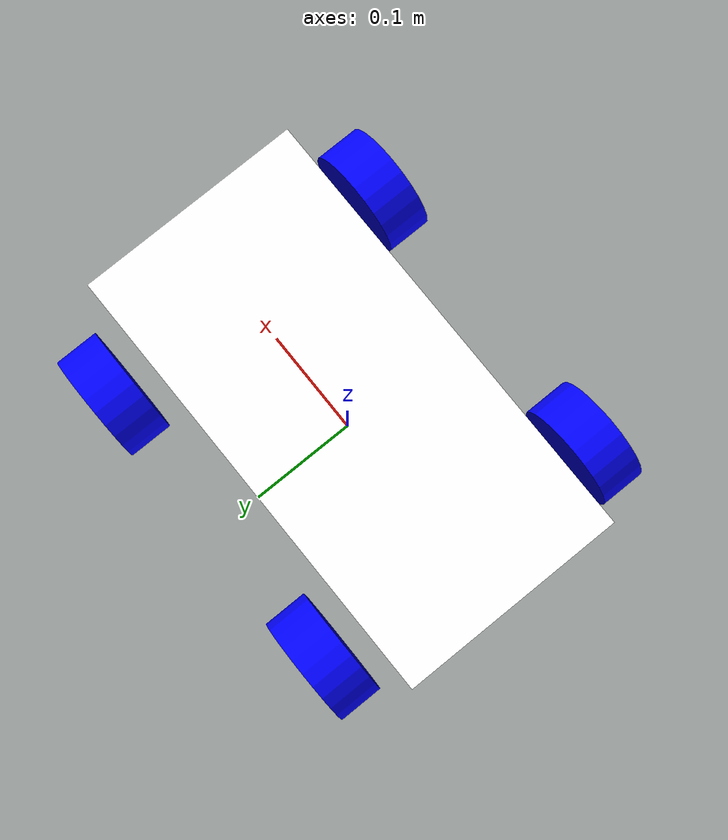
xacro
<?xml version="1.0"?>
<robot xmlns:xacro="http://www.ros.org/wiki/xacro" name="urdf_tutorial">

    <xacro:include filename="macros.xacro"/>

    <material name="white"><color rgba="1 1 1 1" /></material>
    <material name="blue"><color rgba="0 0 1 1"/></material>
    <material name="black"><color rgba="0 0 0 1"/></material>

    <link name="base_link"></link>

    <joint name="chassis_joint" type="fixed">
        <parent link="base_link"/>
        <child link="chassis"/>
        <origin xyz="-0.1 0 0.05"/>
    </joint>

    <link name="chassis">
        <visual>
            <origin xyz="0.1 0 0.05"/>
            <geometry><box size="0.4 0.2 0.1"/></geometry>
            <material name="white"/>
        </visual>
        <collision>
            <origin xyz="0.1 0 0.05"/>
            <geometry><box size="0.4 0.2 0.1"/></geometry>
        </collision>
        <xacro:inertial_box mass="15.0" x="0.4" y="0.2" z="0.1">
            <origin xyz="0.1 0 -0.1" rpy="0 0 0"/>
        </xacro:inertial_box>
    </link>

    <gazebo reference="chassis">
        <material>Gazebo/White</material>
    </gazebo>

    <xacro:macro name="rear_wheel" params="prefix y_offset dir">
        <joint name="${prefix}_wheel_joint" type="continuous">
            <parent link="base_link"/>
            <child link="${prefix}_wheel"/>
            <origin xyz="-0.14 ${y_offset} 0.05" rpy="${dir*pi/2} 0 0" />
            <axis xyz="0 0 ${-1*dir}"/>

            <limit effort="20.0" velocity="50.0"/>
            <dynamics damping="0.1" friction="0.1"/>
        </joint>

        <link name="${prefix}_wheel">
            <visual>
                <geometry><cylinder radius="0.05" length="0.04"/></geometry>
                <material name="blue"/>
            </visual>
            <collision>
                <geometry><cylinder radius="0.05" length="0.04"/></geometry>
            </collision>
            <xacro:inertial_cylinder mass="0.5" length="0.04" radius="0.05">
                <origin xyz="0 0 0" rpy="0 0 0"/>
            </xacro:inertial_cylinder>
        </link>

        <gazebo reference="${prefix}_wheel">
            <material>Gazebo/Blue</material>
            <kp>1000000.0</kp>
            <kd>100.0</kd>
            <mu1>2.0</mu1>
            <mu2>2.0</mu2>
        </gazebo>
    </xacro:macro>

    <xacro:rear_wheel prefix="rear_left" y_offset="0.14" dir="-1"/>
    <xacro:rear_wheel prefix="rear_right" y_offset="-0.14" dir="1"/>

    <xacro:macro name="front_steer_wheel" params="prefix y_offset dir">
        <joint name="${prefix}_steer_joint" type="revolute">
            <parent link="base_link"/>
            <child link="${prefix}_steer_link"/>
            <origin xyz="0.14 ${y_offset} 0.05" rpy="0 0 0"/>
            <axis xyz="0 0 1"/>

            <limit lower="-0.6" upper="0.6" effort="50.0" velocity="50.0"/>
            <dynamics damping="0.1" friction="0.1"/>
        </joint>

        <link name="${prefix}_steer_link">
            <visual>
                <geometry><cylinder radius="0.01" length="0.01"/></geometry>
                <material name="black"/>
            </visual>
            <xacro:inertial_cylinder mass="0.5" length="0.01" radius="0.1">
                <origin xyz="0 0 0" rpy="0 0 0"/>
            </xacro:inertial_cylinder>
        </link>

        <joint name="${prefix}_wheel_joint" type="continuous">
            <parent link="${prefix}_steer_link"/>
            <child link="${prefix}_wheel"/>
            <origin xyz="0 0 0" rpy="${dir*pi/2} 0 0"/>
            <axis xyz="0 0 ${-1*dir}"/>

            <limit effort="20.0" velocity="50.0"/>
            <dynamics damping="0.1" friction="0.1"/>
        </joint>

        <link name="${prefix}_wheel">
            <visual>
                <geometry><cylinder radius="0.05" length="0.04"/></geometry>
                <material name="blue"/>
            </visual>
            <collision>
                <geometry><cylinder radius="0.05" length="0.04"/></geometry>
            </collision>
            <xacro:inertial_cylinder mass="0.5" length="0.04" radius="0.05">
                <origin xyz="0 0 0" rpy="0 0 0"/>
            </xacro:inertial_cylinder>
        </link>

        <gazebo reference="${prefix}_wheel">
            <material>Gazebo/Blue</material>
            <kp>1000000.0</kp>
            <kd>100.0</kd>
            <mu1>1.0</mu1>
            <mu2>1.0</mu2>
        </gazebo>
    </xacro:macro>

    <xacro:front_steer_wheel prefix="front_left" y_offset="0.14" dir="-1"/>
    <xacro:front_steer_wheel prefix="front_right" y_offset="-0.14" dir="1"/>

    <xacro:include filename="gazebo_ackermann_2.xacro"/>

</robot>
